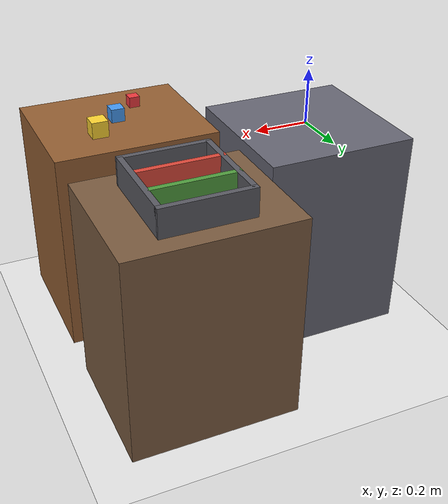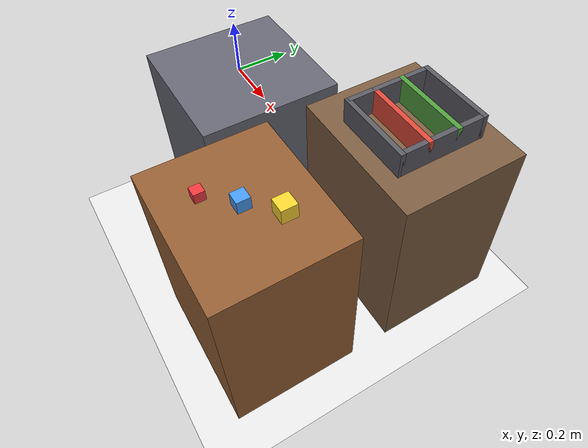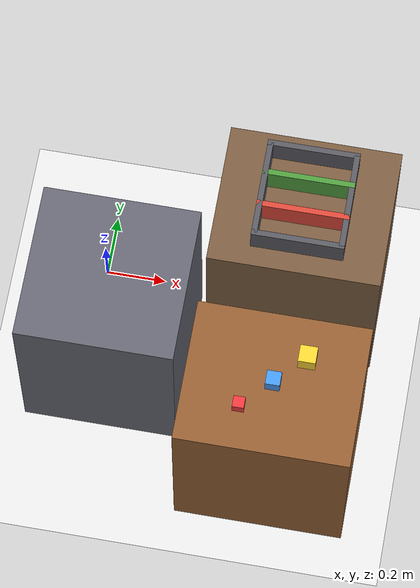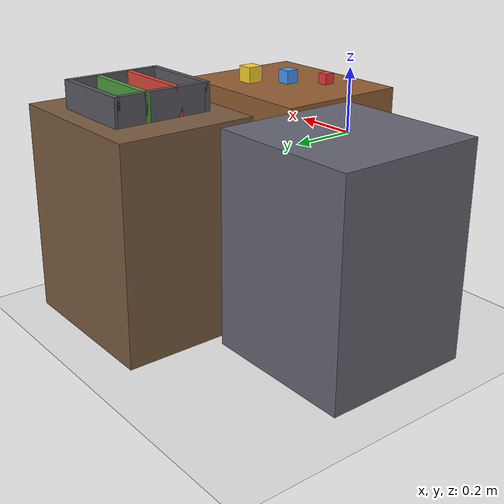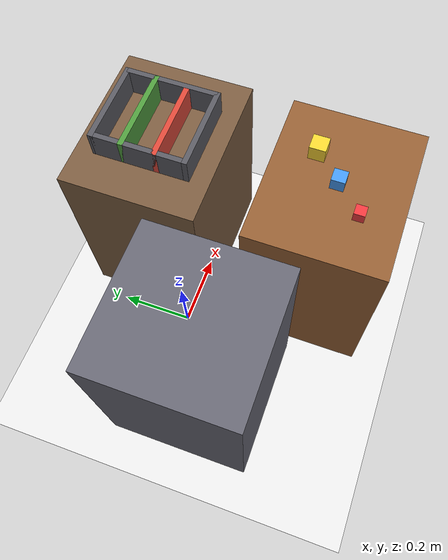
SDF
<?xml version="1.0" ?>
<sdf version="1.9">
  <world name="sorting_demo">
    <gravity>0 0 -9.8</gravity>

    <scene>
      <ambient>0.6 0.6 0.6 1</ambient>
      <background>0.92 0.94 0.97 1</background>
    </scene>

    <light name="sun" type="directional">
      <cast_shadows>true</cast_shadows>
      <pose>0 0 10 0 0 0</pose>
      <diffuse>0.8 0.8 0.8 1</diffuse>
      <specular>0.2 0.2 0.2 1</specular>
      <attenuation>
        <range>1000</range>
        <constant>0.9</constant>
        <linear>0.01</linear>
        <quadratic>0.001</quadratic>
      </attenuation>
      <direction>-0.5 0.1 -0.9</direction>
    </light>

    <model name="ground_plane">
      <static>true</static>
      <pose>0 0 -0.76 0 0 0</pose>
      <link name="link">
        <collision name="collision">
          <geometry>
            <plane>
              <normal>0 0 1</normal>
              <size>20 20</size>
            </plane>
          </geometry>
        </collision>
        <visual name="visual">
          <geometry>
            <plane>
              <normal>0 0 1</normal>
              <size>20 20</size>
            </plane>
          </geometry>
          <material>
            <ambient>0.85 0.85 0.85 1</ambient>
            <diffuse>0.9 0.9 0.9 1</diffuse>
          </material>
        </visual>
      </link>
    </model>

    <model name="robot_table">
      <static>true</static>
      <pose>0.00 0.00 -0.38 0 0 0</pose>
      <link name="link">
        <collision name="collision">
          <geometry>
            <box>
              <size>0.55 0.55 0.76</size>
            </box>
          </geometry>
        </collision>
        <visual name="visual">
          <geometry>
            <box>
              <size>0.55 0.55 0.76</size>
            </box>
          </geometry>
          <material>
            <ambient>0.30 0.30 0.33 1</ambient>
            <diffuse>0.40 0.40 0.45 1</diffuse>
          </material>
        </visual>
      </link>
    </model>

    <model name="source_table">
      <static>true</static>
      <pose>0.62 -0.30 -0.38 0 0 0</pose>
      <link name="link">
        <collision name="collision">
          <geometry>
            <box>
              <size>0.60 0.50 0.76</size>
            </box>
          </geometry>
        </collision>
        <visual name="visual">
          <geometry>
            <box>
              <size>0.60 0.50 0.76</size>
            </box>
          </geometry>
          <material>
            <ambient>0.48 0.31 0.17 1</ambient>
            <diffuse>0.58 0.37 0.20 1</diffuse>
          </material>
        </visual>
      </link>
    </model>

    <model name="target_table">
      <static>true</static>
      <pose>0.62 0.36 -0.38 0 0 0</pose>
      <link name="link">
        <collision name="collision">
          <geometry>
            <box>
              <size>0.60 0.50 0.76</size>
            </box>
          </geometry>
        </collision>
        <visual name="visual">
          <geometry>
            <box>
              <size>0.60 0.50 0.76</size>
            </box>
          </geometry>
          <material>
            <ambient>0.38 0.29 0.20 1</ambient>
            <diffuse>0.48 0.36 0.25 1</diffuse>
          </material>
        </visual>
      </link>
    </model>

    <model name="target_sector_front_wall">
      <static>true</static>
      <pose>0.62 0.19 0.05 0 0 0</pose>
      <link name="link">
        <collision name="collision">
          <geometry>
            <box>
              <size>0.32 0.02 0.10</size>
            </box>
          </geometry>
        </collision>
        <visual name="visual">
          <geometry>
            <box>
              <size>0.32 0.02 0.10</size>
            </box>
          </geometry>
          <material>
            <ambient>0.25 0.25 0.28 1</ambient>
            <diffuse>0.35 0.35 0.38 1</diffuse>
          </material>
        </visual>
      </link>
    </model>

    <model name="target_sector_back_wall">
      <static>true</static>
      <pose>0.62 0.53 0.05 0 0 0</pose>
      <link name="link">
        <collision name="collision">
          <geometry>
            <box>
              <size>0.32 0.02 0.10</size>
            </box>
          </geometry>
        </collision>
        <visual name="visual">
          <geometry>
            <box>
              <size>0.32 0.02 0.10</size>
            </box>
          </geometry>
          <material>
            <ambient>0.25 0.25 0.28 1</ambient>
            <diffuse>0.35 0.35 0.38 1</diffuse>
          </material>
        </visual>
      </link>
    </model>

    <model name="target_sector_left_wall">
      <static>true</static>
      <pose>0.47 0.36 0.05 0 0 0</pose>
      <link name="link">
        <collision name="collision">
          <geometry>
            <box>
              <size>0.02 0.34 0.10</size>
            </box>
          </geometry>
        </collision>
        <visual name="visual">
          <geometry>
            <box>
              <size>0.02 0.34 0.10</size>
            </box>
          </geometry>
          <material>
            <ambient>0.25 0.25 0.28 1</ambient>
            <diffuse>0.35 0.35 0.38 1</diffuse>
          </material>
        </visual>
      </link>
    </model>

    <model name="target_sector_right_wall">
      <static>true</static>
      <pose>0.77 0.36 0.05 0 0 0</pose>
      <link name="link">
        <collision name="collision">
          <geometry>
            <box>
              <size>0.02 0.34 0.10</size>
            </box>
          </geometry>
        </collision>
        <visual name="visual">
          <geometry>
            <box>
              <size>0.02 0.34 0.10</size>
            </box>
          </geometry>
          <material>
            <ambient>0.25 0.25 0.28 1</ambient>
            <diffuse>0.35 0.35 0.38 1</diffuse>
          </material>
        </visual>
      </link>
    </model>

    <model name="target_sector_divider_1">
      <static>true</static>
      <pose>0.62 0.30 0.05 0 0 0</pose>
      <link name="link">
        <collision name="collision">
          <geometry>
            <box>
              <size>0.32 0.02 0.10</size>
            </box>
          </geometry>
        </collision>
        <visual name="visual">
          <geometry>
            <box>
              <size>0.32 0.02 0.10</size>
            </box>
          </geometry>
          <material>
            <ambient>0.78 0.21 0.16 1</ambient>
            <diffuse>0.86 0.28 0.22 1</diffuse>
          </material>
        </visual>
      </link>
    </model>

    <model name="target_sector_divider_2">
      <static>true</static>
      <pose>0.62 0.42 0.05 0 0 0</pose>
      <link name="link">
        <collision name="collision">
          <geometry>
            <box>
              <size>0.32 0.02 0.10</size>
            </box>
          </geometry>
        </collision>
        <visual name="visual">
          <geometry>
            <box>
              <size>0.32 0.02 0.10</size>
            </box>
          </geometry>
          <material>
            <ambient>0.22 0.46 0.18 1</ambient>
            <diffuse>0.31 0.61 0.24 1</diffuse>
          </material>
        </visual>
      </link>
    </model>

    <model name="cube_small">
      <static>false</static>
      <pose>0.52 -0.40 0.02 0 0 0</pose>
      <link name="link">
        <inertial>
          <mass>0.05</mass>
          <inertia>
            <ixx>0.00002</ixx>
            <iyy>0.00002</iyy>
            <izz>0.00002</izz>
            <ixy>0</ixy>
            <ixz>0</ixz>
            <iyz>0</iyz>
          </inertia>
        </inertial>
        <collision name="collision">
          <geometry>
            <box>
              <size>0.04 0.04 0.04</size>
            </box>
          </geometry>
          <surface>
            <friction>
              <ode>
                <mu>10.0</mu>
                <mu2>10.0</mu2>
              </ode>
            </friction>
            <contact>
              <ode>
                <kp>2000000</kp>
                <kd>10</kd>
                <min_depth>0.001</min_depth>
                <max_vel>0.2</max_vel>
              </ode>
            </contact>
          </surface>
        </collision>
        <visual name="visual">
          <geometry>
            <box>
              <size>0.04 0.04 0.04</size>
            </box>
          </geometry>
          <material>
            <ambient>0.84 0.16 0.18 1</ambient>
            <diffuse>0.93 0.22 0.24 1</diffuse>
          </material>
        </visual>
      </link>
    </model>

    <model name="cube_medium">
      <static>false</static>
      <pose>0.62 -0.30 0.025 0 0 0</pose>
      <link name="link">
        <inertial>
          <mass>0.06</mass>
          <inertia>
            <ixx>0.00003</ixx>
            <iyy>0.00003</iyy>
            <izz>0.00003</izz>
            <ixy>0</ixy>
            <ixz>0</ixz>
            <iyz>0</iyz>
          </inertia>
        </inertial>
        <collision name="collision">
          <geometry>
            <box>
              <size>0.05 0.05 0.05</size>
            </box>
          </geometry>
          <surface>
            <friction>
              <ode>
                <mu>10.0</mu>
                <mu2>10.0</mu2>
              </ode>
            </friction>
            <contact>
              <ode>
                <kp>2000000</kp>
                <kd>10</kd>
                <min_depth>0.001</min_depth>
                <max_vel>0.2</max_vel>
              </ode>
            </contact>
          </surface>
        </collision>
        <visual name="visual">
          <geometry>
            <box>
              <size>0.05 0.05 0.05</size>
            </box>
          </geometry>
          <material>
            <ambient>0.20 0.48 0.85 1</ambient>
            <diffuse>0.27 0.60 0.95 1</diffuse>
          </material>
        </visual>
      </link>
    </model>

    <model name="cube_large">
      <static>false</static>
      <pose>0.72 -0.20 0.03 0 0 0</pose>
      <link name="link">
        <inertial>
          <mass>0.08</mass>
          <inertia>
            <ixx>0.00005</ixx>
            <iyy>0.00005</iyy>
            <izz>0.00005</izz>
            <ixy>0</ixy>
            <ixz>0</ixz>
            <iyz>0</iyz>
          </inertia>
        </inertial>
        <collision name="collision">
          <geometry>
            <box>
              <size>0.06 0.06 0.06</size>
            </box>
          </geometry>
          <surface>
            <friction>
              <ode>
                <mu>10.0</mu>
                <mu2>10.0</mu2>
              </ode>
            </friction>
            <contact>
              <ode>
                <kp>2000000</kp>
                <kd>10</kd>
                <min_depth>0.001</min_depth>
                <max_vel>0.2</max_vel>
              </ode>
            </contact>
          </surface>
        </collision>
        <visual name="visual">
          <geometry>
            <box>
              <size>0.06 0.06 0.06</size>
            </box>
          </geometry>
          <material>
            <ambient>0.96 0.75 0.12 1</ambient>
            <diffuse>0.99 0.83 0.19 1</diffuse>
          </material>
        </visual>
      </link>
    </model>
  </world>
</sdf>
